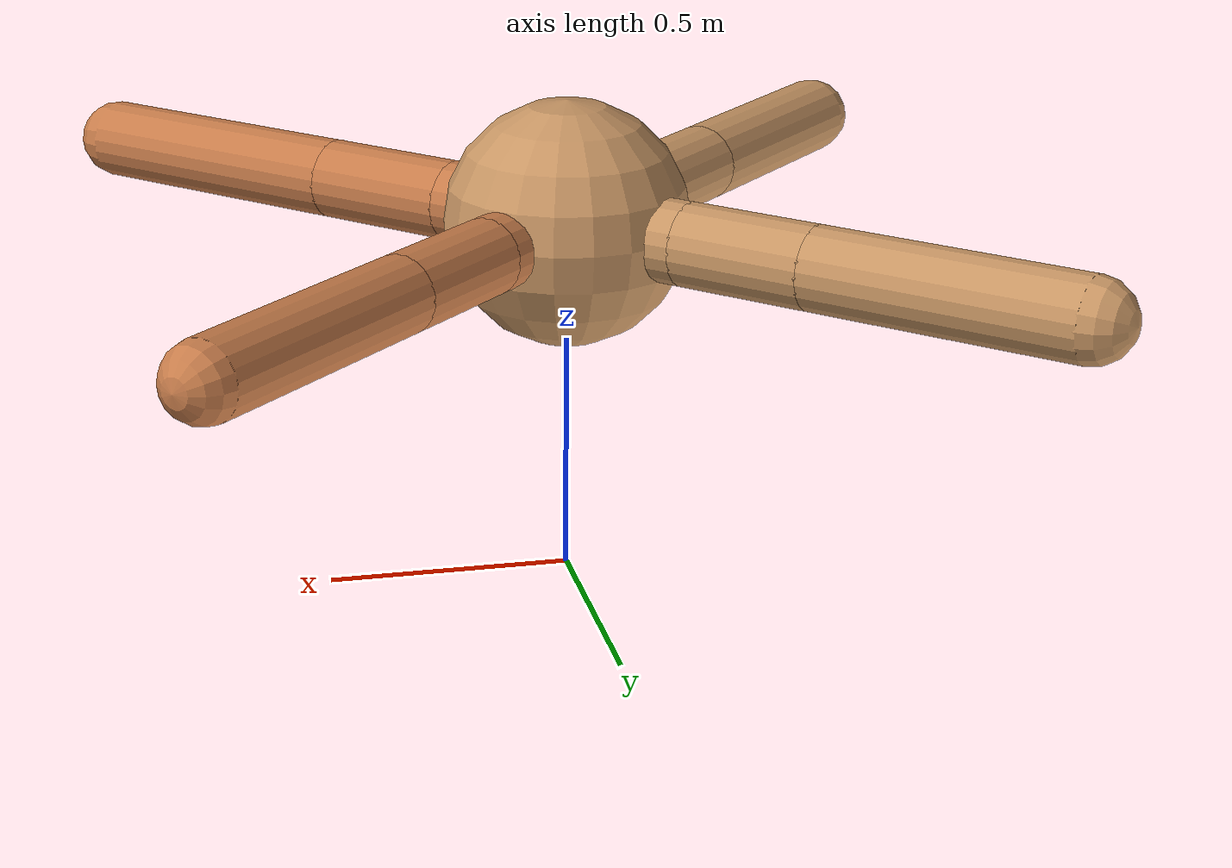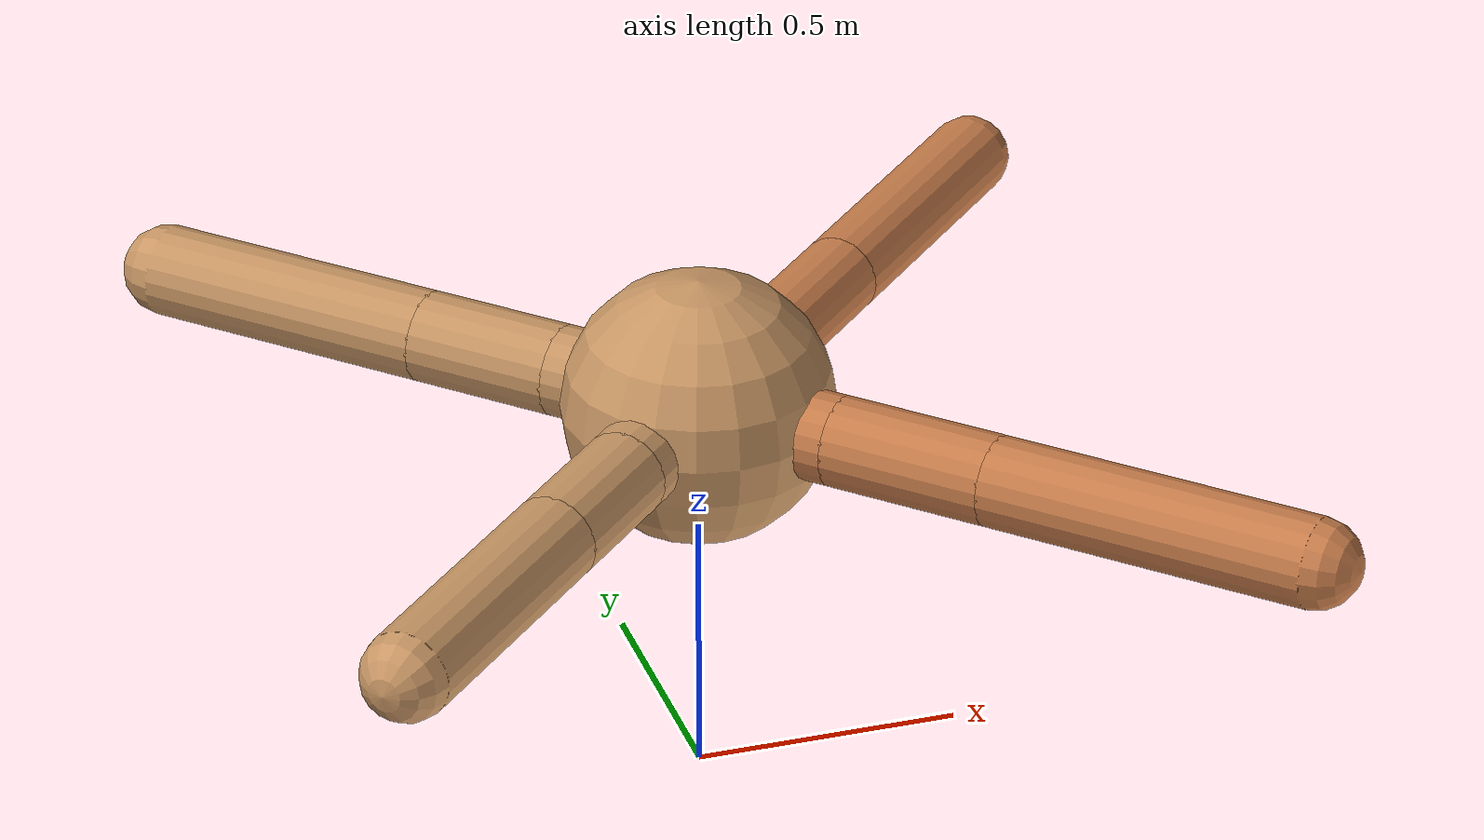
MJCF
<?xml version="1.0" ?>
<mujoco model="ant">

	<compiler angle="degree" coordinate="local" inertiafromgeom="true"/>

	<option integrator="RK4" timestep="0.01"/>

	<custom>

		<numeric data="0.0 0.0 0.55 1.0 0.0 0.0 0.0 0.0 1.0 0.0 -1.0 0.0 -1.0 0.0 1.0" name="init_qpos"/>

	</custom>

	<default>

		<joint armature="1" damping="1" limited="true"/>

		<geom conaffinity="0" condim="3" density="5.0" friction="1.5 0.1 0.1" margin="0.01" rgba="0.8 0.6 0.4 1"/>

	</default>

	<worldbody>

		<body name="torso" pos="0 0 0.75">

			<geom name="torso_geom" pos="0 0 0" size="0.25225362685319497" type="sphere"/>

			<!--joint armature="0" damping="0" limited="false" margin="0.01" name="root" pos="0 0 0" type="free"/-->

			<body name="front_left_leg" pos="0 0 0">

				<geom fromto="0 0 0 0.2 0.2 0" name="aux_1_geom" size="0.0775365784517948" type="capsule" rgba=".8 .5 .3 1"/>

				<body name="aux_1" pos="0.2 0.2 0">

					<joint axis="0 0 1" name="hip_1" pos="0.0 0.0 0.0" range="-40 40" type="hinge"/>

					<geom fromto="0 0 0 0.19701520019933147 0.19701520019933147 0" name="left_leg_geom" size="0.0775365784517948" type="capsule" rgba=".8 .5 .3 1"/>

					<body pos="0.19701520019933147 0.19701520019933147 0" name="front_left_foot">

						<joint axis="-1 1 0" name="ankle_1" pos="0.0 0.0 0.0" range="30 100" type="hinge"/>

						<geom fromto="0 0 0 0.39403040039866294 0.39403040039866294 0" name="left_ankle_geom" size="0.0775365784517948" type="capsule" rgba=".8 .5 .3 1"/>

					</body>

				</body>

			</body>

			<body name="front_right_leg" pos="0 0 0">

				<geom fromto="0 0 0 -0.2 0.2 0" name="aux_2_geom" size="0.08546339369744971" type="capsule"/>

				<body name="aux_2" pos="-0.2 0.2 0">

					<joint axis="0 0 1" name="hip_2" pos="0.0 0.0 0.0" range="-40 40" type="hinge"/>

					<geom fromto="0 0 0 -0.19771403848424482 0.19771403848424482 0" name="right_leg_geom" size="0.08546339369744971" type="capsule"/>

					<body pos="-0.19771403848424482 0.19771403848424482 0" name="front_right_foot">

						<joint axis="1 1 0" name="ankle_2" pos="0.0 0.0 0.0" range="-100 -30" type="hinge"/>

						<geom fromto="0 0 0 -0.39542807696848964 0.39542807696848964 0" name="right_ankle_geom" size="0.08546339369744971" type="capsule"/>

					</body>

				</body>

			</body>

			<body name="left_back_leg" pos="0 0 0">

				<geom fromto="0 0 0 -0.2 -0.2 0" name="aux_3_geom" size="0.08252744439159568" type="capsule"/>

				<body name="aux_3" pos="-0.2 -0.2 0">

					<joint axis="0 0 1" name="hip_3" pos="0.0 0.0 0.0" range="-40 40" type="hinge"/>

					<geom fromto="0 0 0 -0.18163195955959097 -0.18163195955959097 0" name="back_leg_geom" size="0.08252744439159568" type="capsule"/>

					<body pos="-0.18163195955959097 -0.18163195955959097 0" name="left_back_foot">

						<joint axis="-1 1 0" name="ankle_3" pos="0.0 0.0 0.0" range="-100 -30" type="hinge"/>

						<geom fromto="0 0 0 -0.36326391911918193 -0.36326391911918193 0" name="third_ankle_geom" size="0.08252744439159568" type="capsule"/>

					</body>

				</body>

			</body>

			<body name="right_back_leg" pos="0 0 0">

				<geom fromto="0 0 0 0.2 -0.2 0" name="aux_4_geom" size="0.08379257837361151" type="capsule" rgba=".8 .5 .3 1"/>

				<body name="aux_4" pos="0.2 -0.2 0">

					<joint axis="0 0 1" name="hip_4" pos="0.0 0.0 0.0" range="-40 40" type="hinge"/>

					<geom fromto="0 0 0 0.21845446363187243 -0.21845446363187243 0" name="rightback_leg_geom" size="0.08379257837361151" type="capsule" rgba=".8 .5 .3 1"/>

					<body pos="0.21845446363187243 -0.21845446363187243 0" name="right_back_foot">

						<joint axis="1 1 0" name="ankle_4" pos="0.0 0.0 0.0" range="30 100" type="hinge"/>

						<geom fromto="0 0 0 0.43690892726374486 -0.43690892726374486 0" name="fourth_ankle_geom" size="0.08379257837361151" type="capsule" rgba=".8 .5 .3 1"/>

					</body>

				</body>

			</body>

		</body>

	</worldbody>

	<actuator>

		<motor ctrllimited="true" ctrlrange="-1.0 1.0" joint="hip_4" gear="150"/>

		<motor ctrllimited="true" ctrlrange="-1.0 1.0" joint="ankle_4" gear="150"/>

		<motor ctrllimited="true" ctrlrange="-1.0 1.0" joint="hip_1" gear="150"/>

		<motor ctrllimited="true" ctrlrange="-1.0 1.0" joint="ankle_1" gear="150"/>

		<motor ctrllimited="true" ctrlrange="-1.0 1.0" joint="hip_2" gear="150"/>

		<motor ctrllimited="true" ctrlrange="-1.0 1.0" joint="ankle_2" gear="150"/>

		<motor ctrllimited="true" ctrlrange="-1.0 1.0" joint="hip_3" gear="150"/>

		<motor ctrllimited="true" ctrlrange="-1.0 1.0" joint="ankle_3" gear="150"/>

	</actuator>

</mujoco>
